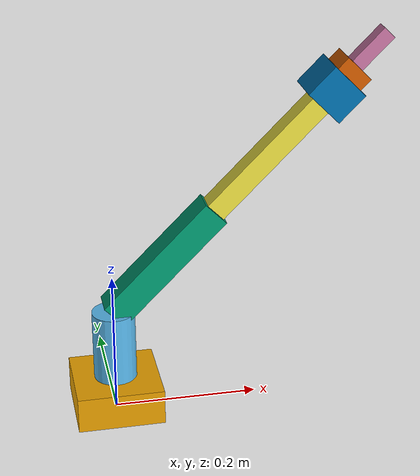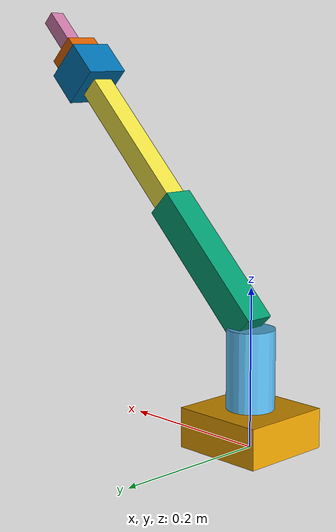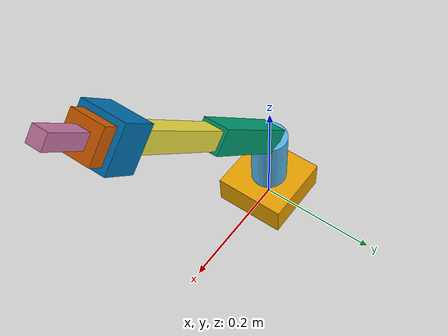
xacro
<?xml version="1.0"?>
<robot name="arm_2026" xmlns:xacro="http://www.ros.org/wiki/xacro">

  <link name="base_link">
    <visual>
      <origin xyz="0 0 0.025" rpy="0 0 0"/>
      <geometry>
        <box size="0.12 0.12 0.05"/>
      </geometry>
    </visual>
  </link>

  <link name="base_link_1">
    <visual>
      <origin xyz="0 0 0.05" rpy="0 0 0"/>
      <geometry>
        <cylinder radius="0.03" length="0.10"/>
      </geometry>
    </visual>
  </link>

  <link name="shoulder_link">
    <visual>
      <origin xyz="0.10 0 0" rpy="0 0 0"/>
      <geometry>
        <box size="0.20 0.04 0.04"/>
      </geometry>
    </visual>
  </link>

  <link name="elbow_link">
    <visual>
      <origin xyz="0.10 0 0" rpy="0 0 0"/>
      <geometry>
        <box size="0.20 0.03 0.03"/>
      </geometry>
    </visual>
  </link>

  <!-- Main wrist housing -->
  <link name="wrist_roll_link">
    <visual>
      <origin xyz="0.025 0 0" rpy="0 0 0"/>
      <geometry>
        <box size="0.05 0.06 0.06"/>
      </geometry>
    </visual>
    <visual>
      <origin xyz="0.025 0 0" rpy="0 1.5708 0"/>
      <geometry>
        <cylinder radius="0.018" length="0.05"/>
      </geometry>
    </visual>
  </link>

  <!-- Front/output wrist piece -->
  <link name="wrist_twist_link">
    <visual>
      <origin xyz="0.02 0 0" rpy="0 0 0"/>
      <geometry>
        <box size="0.04 0.045 0.045"/>
      </geometry>
    </visual>
  </link>

  <!-- Simple claw visual -->
  <link name="claw_link">
    <visual>
      <origin xyz="0.03 0 0" rpy="0 0 0"/>
      <geometry>
        <box size="0.06 0.02 0.02"/>
      </geometry>
    </visual>
  </link>

  <joint name="base_yaw" type="revolute">
    <parent link="base_link"/>
    <child link="base_link_1"/>
    <origin xyz="0 0 0.05" rpy="0 0 0"/>
    <axis xyz="0 0 1"/>
    <limit lower="-3.14" upper="3.14" effort="10" velocity="1.0"/>
  </joint>

  <!-- Zero position now starts 45 degrees upward -->
  <joint name="shoulder_extension" type="revolute">
    <parent link="base_link_1"/>
    <child link="shoulder_link"/>
    <origin xyz="0 0 0.10" rpy="0 -0.785398 0"/>
    <axis xyz="0 1 0"/>
    <limit lower="-1.57" upper="1.57" effort="10" velocity="0.2"/>
  </joint>

  <joint name="elbow_extension" type="revolute">
    <parent link="shoulder_link"/>
    <child link="elbow_link"/>
    <origin xyz="0.20 0 0" rpy="0 0 0"/>
    <axis xyz="0 1 0"/>
    <limit lower="-1.57" upper="1.57" effort="10" velocity="0.2"/>
  </joint>

  <!-- Wrist module starts at forearm tip -->
  <joint name="wrist_roll" type="revolute">
    <parent link="elbow_link"/>
    <child link="wrist_roll_link"/>
    <origin xyz="0.20 0 0" rpy="0 0 0"/>
    <axis xyz="0 1 0"/>
    <limit lower="-1.57" upper="1.57" effort="10" velocity="0.5"/>
  </joint>

  <!-- Twist joint is almost co-located with wrist housing -->
  <joint name="wrist_twist" type="revolute">
    <parent link="wrist_roll_link"/>
    <child link="wrist_twist_link"/>
    <origin xyz="0.03 0 0" rpy="0 0 0"/>
    <axis xyz="1 0 0"/>
    <limit lower="-1.57" upper="1.57" effort="10" velocity="0.5"/>
  </joint>

  <!-- Claw attached after wrist twist -->
  <joint name="claw" type="revolute">
    <parent link="wrist_twist_link"/>
    <child link="claw_link"/>
    <origin xyz="0.04 0 0" rpy="0 0 0"/>
    <axis xyz="0 1 0"/>
    <limit lower="-1.57" upper="1.57" effort="10" velocity="0.5"/>
  </joint>

    <ros2_control name="Arm2026Hardware" type="system">
    <hardware>
      <plugin>arm_2026/Arm2026System</plugin>
    </hardware>

    <joint name="base_yaw">
      <command_interface name="velocity"/>
      <state_interface name="position"/>
    </joint>

    <joint name="shoulder_extension">
      <command_interface name="velocity"/>
      <state_interface name="position"/>
    </joint>

    <joint name="elbow_extension">
      <command_interface name="velocity"/>
      <state_interface name="position"/>
    </joint>

    <joint name="wrist_roll">
      <command_interface name="velocity"/>
      <state_interface name="position"/>
    </joint>

    <joint name="wrist_twist">
      <command_interface name="velocity"/>
      <state_interface name="position"/>
    </joint>

    <joint name="claw">
      <command_interface name="velocity"/>
      <state_interface name="position"/>
    </joint>
  </ros2_control>

</robot>
